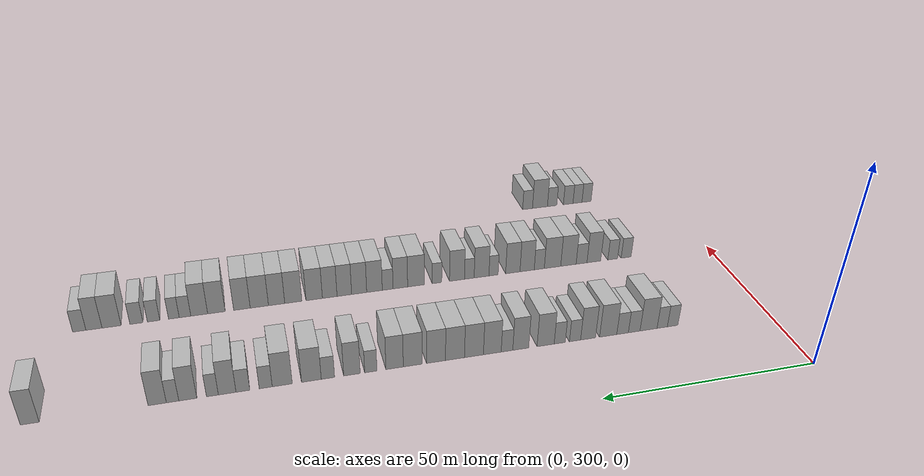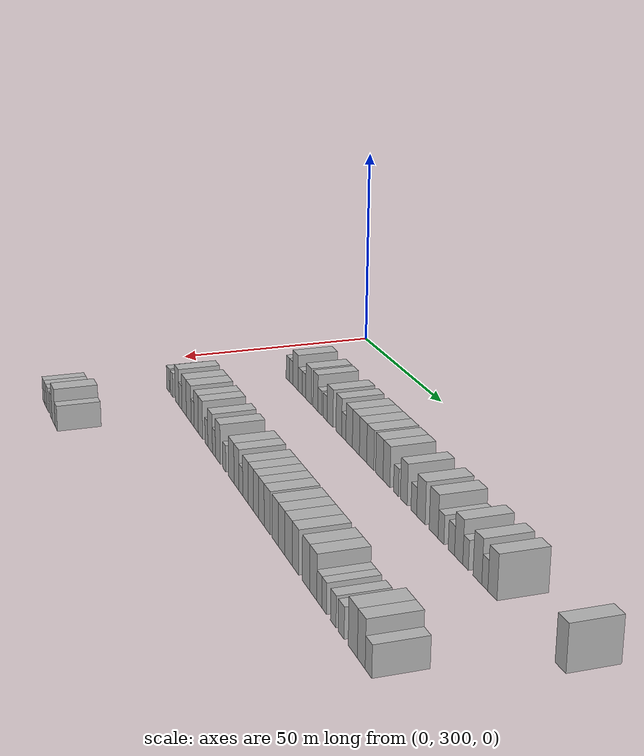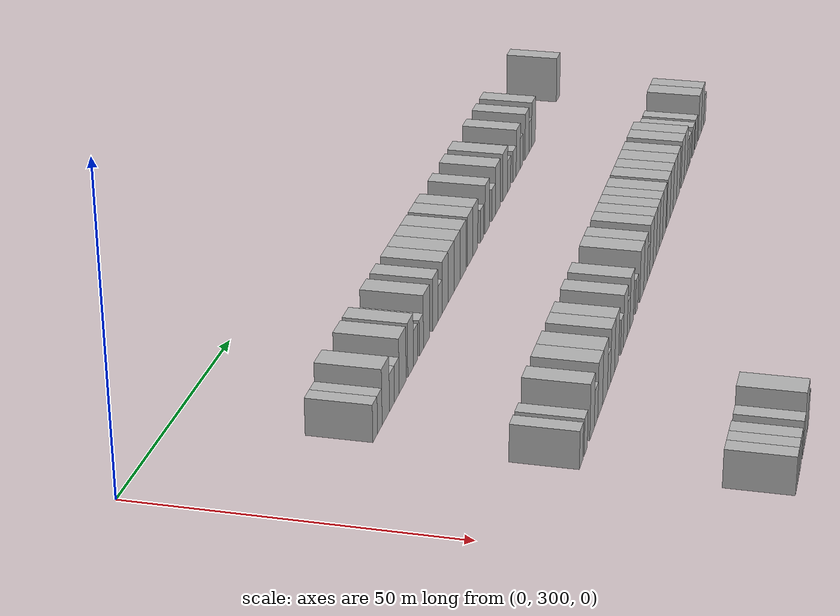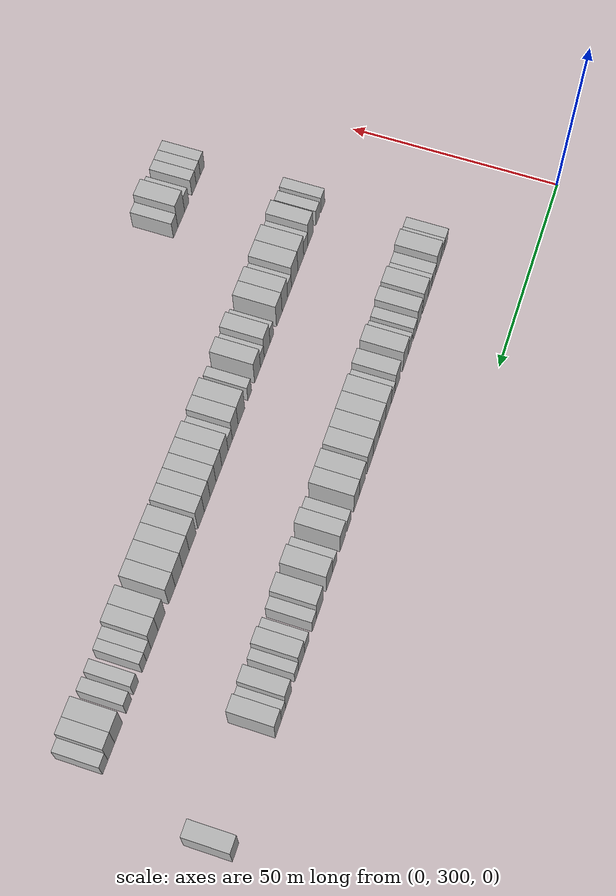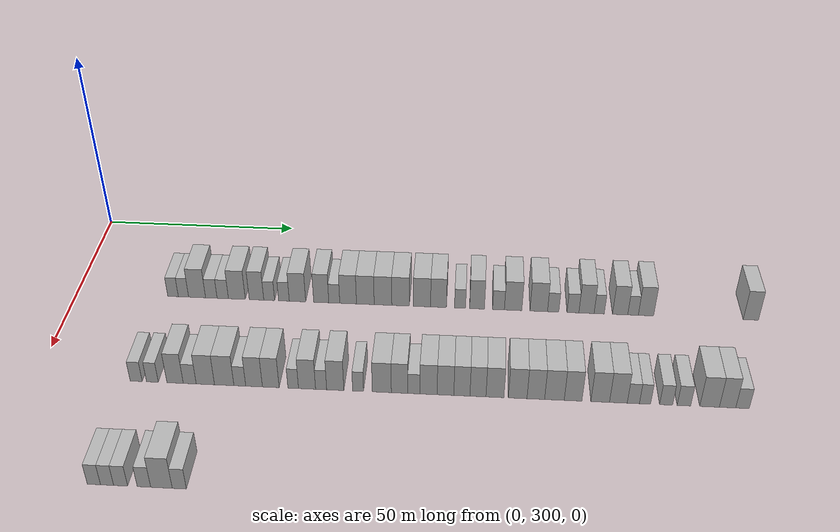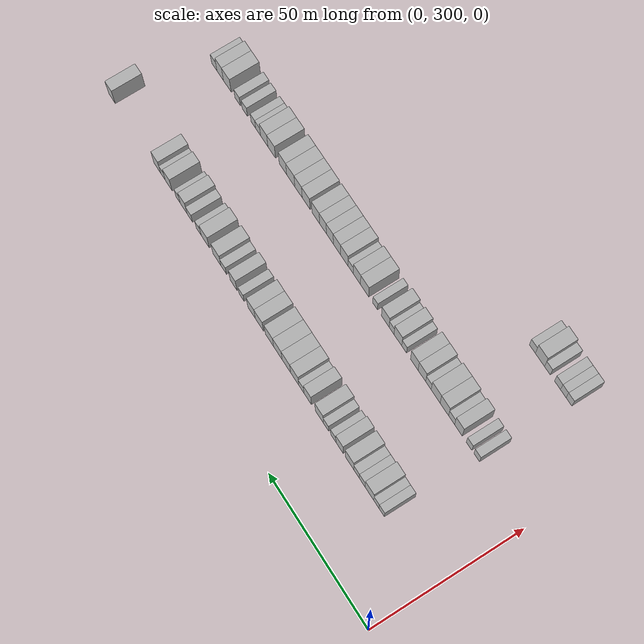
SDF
<sdf version="1.6">
 <world name="default">
  <model name="building_189">
   <static>1</static>
   <pose>25.0000 324.3886 0 0.000000 0.000000 0.000000</pose>
   <link name="link">
    <pose>0 0 3.00 0 0 0</pose>
    <collision name="collision"><geometry><box><size>10.0000 2.6767 6.0000</size></box></geometry></collision>
    <visual name="visual">
     <cast_shadows>0</cast_shadows>
     <geometry><box><size>10.0000 2.6767 6.0000</size></box></geometry>
     <material>
      <script>
       <uri>model://HANNAS_wall/materials/scripts</uri>
       <uri>model://HANNAS_wall/materials/textures</uri>
       <name>vrc/HANNAS_wall</name>
      </script>
     </material>
    </visual>
   </link>
  </model>
  <model name="building_190">
   <static>1</static>
   <pose>25.0000 327.0334 0 0.000000 0.000000 0.000000</pose>
   <link name="link">
    <pose>0 0 3.00 0 0 0</pose>
    <collision name="collision"><geometry><box><size>10.0000 2.6129 6.0000</size></box></geometry></collision>
    <visual name="visual">
     <cast_shadows>0</cast_shadows>
     <geometry><box><size>10.0000 2.6129 6.0000</size></box></geometry>
     <material>
      <script>
       <uri>model://HANNAS_wall/materials/scripts</uri>
       <uri>model://HANNAS_wall/materials/textures</uri>
       <name>vrc/HANNAS_wall</name>
      </script>
     </material>
    </visual>
   </link>
  </model>
  <model name="building_191">
   <static>1</static>
   <pose>25.0000 330.4876 0 0.000000 0.000000 0.000000</pose>
   <link name="link">
    <pose>0 0 4.50 0 0 0</pose>
    <collision name="collision"><geometry><box><size>10.0000 4.2954 9.0000</size></box></geometry></collision>
    <visual name="visual">
     <cast_shadows>0</cast_shadows>
     <geometry><box><size>10.0000 4.2954 9.0000</size></box></geometry>
     <material>
      <script>
       <uri>model://HANNAS_wall/materials/scripts</uri>
       <uri>model://HANNAS_wall/materials/textures</uri>
       <name>vrc/HANNAS_wall</name>
      </script>
     </material>
    </visual>
   </link>
  </model>
  <model name="building_192">
   <static>1</static>
   <pose>25.0000 334.0920 0 0.000000 0.000000 0.000000</pose>
   <link name="link">
    <pose>0 0 3.00 0 0 0</pose>
    <collision name="collision"><geometry><box><size>10.0000 2.9133 6.0000</size></box></geometry></collision>
    <visual name="visual">
     <cast_shadows>0</cast_shadows>
     <geometry><box><size>10.0000 2.9133 6.0000</size></box></geometry>
     <material>
      <script>
       <uri>model://HANNAS_wall/materials/scripts</uri>
       <uri>model://HANNAS_wall/materials/textures</uri>
       <name>vrc/HANNAS_wall</name>
      </script>
     </material>
    </visual>
   </link>
  </model>
  <model name="building_193">
   <static>1</static>
   <pose>25.0000 336.9892 0 0.000000 0.000000 0.000000</pose>
   <link name="link">
    <pose>0 0 3.00 0 0 0</pose>
    <collision name="collision"><geometry><box><size>10.0000 2.8812 6.0000</size></box></geometry></collision>
    <visual name="visual">
     <cast_shadows>0</cast_shadows>
     <geometry><box><size>10.0000 2.8812 6.0000</size></box></geometry>
     <material>
      <script>
       <uri>model://HANNAS_wall/materials/scripts</uri>
       <uri>model://HANNAS_wall/materials/textures</uri>
       <name>vrc/HANNAS_wall</name>
      </script>
     </material>
    </visual>
   </link>
  </model>
  <model name="building_194">
   <static>1</static>
   <pose>25.0000 340.5602 0 0.000000 0.000000 0.000000</pose>
   <link name="link">
    <pose>0 0 4.50 0 0 0</pose>
    <collision name="collision"><geometry><box><size>10.0000 4.2607 9.0000</size></box></geometry></collision>
    <visual name="visual">
     <cast_shadows>0</cast_shadows>
     <geometry><box><size>10.0000 4.2607 9.0000</size></box></geometry>
     <material>
      <script>
       <uri>model://HANNAS_wall/materials/scripts</uri>
       <uri>model://HANNAS_wall/materials/textures</uri>
       <name>vrc/HANNAS_wall</name>
      </script>
     </material>
    </visual>
   </link>
  </model>
  <model name="building_195">
   <static>1</static>
   <pose>25.0000 345.5184 0 0.000000 0.000000 0.000000</pose>
   <link name="link">
    <pose>0 0 4.50 0 0 0</pose>
    <collision name="collision"><geometry><box><size>10.0000 3.6558 9.0000</size></box></geometry></collision>
    <visual name="visual">
     <cast_shadows>0</cast_shadows>
     <geometry><box><size>10.0000 3.6558 9.0000</size></box></geometry>
     <material>
      <script>
       <uri>model://HANNAS_wall/materials/scripts</uri>
       <uri>model://HANNAS_wall/materials/textures</uri>
       <name>vrc/HANNAS_wall</name>
      </script>
     </material>
    </visual>
   </link>
  </model>
  <model name="building_196">
   <static>1</static>
   <pose>25.0000 348.7129 0 0.000000 0.000000 0.000000</pose>
   <link name="link">
    <pose>0 0 3.00 0 0 0</pose>
    <collision name="collision"><geometry><box><size>10.0000 2.7330 6.0000</size></box></geometry></collision>
    <visual name="visual">
     <cast_shadows>0</cast_shadows>
     <geometry><box><size>10.0000 2.7330 6.0000</size></box></geometry>
     <material>
      <script>
       <uri>model://HANNAS_wall/materials/scripts</uri>
       <uri>model://HANNAS_wall/materials/textures</uri>
       <name>vrc/HANNAS_wall</name>
      </script>
     </material>
    </visual>
   </link>
  </model>
  <model name="building_197">
   <static>1</static>
   <pose>25.0000 352.4227 0 0.000000 0.000000 0.000000</pose>
   <link name="link">
    <pose>0 0 3.00 0 0 0</pose>
    <collision name="collision"><geometry><box><size>10.0000 2.6866 6.0000</size></box></geometry></collision>
    <visual name="visual">
     <cast_shadows>0</cast_shadows>
     <geometry><box><size>10.0000 2.6866 6.0000</size></box></geometry>
     <material>
      <script>
       <uri>model://HANNAS_wall/materials/scripts</uri>
       <uri>model://HANNAS_wall/materials/textures</uri>
       <name>vrc/HANNAS_wall</name>
      </script>
     </material>
    </visual>
   </link>
  </model>
  <model name="building_198">
   <static>1</static>
   <pose>25.0000 355.8273 0 0.000000 0.000000 0.000000</pose>
   <link name="link">
    <pose>0 0 4.50 0 0 0</pose>
    <collision name="collision"><geometry><box><size>10.0000 4.1227 9.0000</size></box></geometry></collision>
    <visual name="visual">
     <cast_shadows>0</cast_shadows>
     <geometry><box><size>10.0000 4.1227 9.0000</size></box></geometry>
     <material>
      <script>
       <uri>model://HANNAS_wall/materials/scripts</uri>
       <uri>model://HANNAS_wall/materials/textures</uri>
       <name>vrc/HANNAS_wall</name>
      </script>
     </material>
    </visual>
   </link>
  </model>
  <model name="building_199">
   <static>1</static>
   <pose>25.0000 361.7831 0 0.000000 0.000000 0.000000</pose>
   <link name="link">
    <pose>0 0 4.50 0 0 0</pose>
    <collision name="collision"><geometry><box><size>10.0000 3.7888 9.0000</size></box></geometry></collision>
    <visual name="visual">
     <cast_shadows>0</cast_shadows>
     <geometry><box><size>10.0000 3.7888 9.0000</size></box></geometry>
     <material>
      <script>
       <uri>model://HANNAS_wall/materials/scripts</uri>
       <uri>model://HANNAS_wall/materials/textures</uri>
       <name>vrc/HANNAS_wall</name>
      </script>
     </material>
    </visual>
   </link>
  </model>
  <model name="building_200">
   <static>1</static>
   <pose>25.0000 365.0500 0 0.000000 0.000000 0.000000</pose>
   <link name="link">
    <pose>0 0 3.00 0 0 0</pose>
    <collision name="collision"><geometry><box><size>10.0000 2.7452 6.0000</size></box></geometry></collision>
    <visual name="visual">
     <cast_shadows>0</cast_shadows>
     <geometry><box><size>10.0000 2.7452 6.0000</size></box></geometry>
     <material>
      <script>
       <uri>model://HANNAS_wall/materials/scripts</uri>
       <uri>model://HANNAS_wall/materials/textures</uri>
       <name>vrc/HANNAS_wall</name>
      </script>
     </material>
    </visual>
   </link>
  </model>
  <model name="building_201">
   <static>1</static>
   <pose>25.0000 368.5111 0 0.000000 0.000000 0.000000</pose>
   <link name="link">
    <pose>0 0 4.50 0 0 0</pose>
    <collision name="collision"><geometry><box><size>10.0000 4.1770 9.0000</size></box></geometry></collision>
    <visual name="visual">
     <cast_shadows>0</cast_shadows>
     <geometry><box><size>10.0000 4.1770 9.0000</size></box></geometry>
     <material>
      <script>
       <uri>model://HANNAS_wall/materials/scripts</uri>
       <uri>model://HANNAS_wall/materials/textures</uri>
       <name>vrc/HANNAS_wall</name>
      </script>
     </material>
    </visual>
   </link>
  </model>
  <model name="building_202">
   <static>1</static>
   <pose>25.0000 372.8101 0 0.000000 0.000000 0.000000</pose>
   <link name="link">
    <pose>0 0 4.50 0 0 0</pose>
    <collision name="collision"><geometry><box><size>10.0000 4.4209 9.0000</size></box></geometry></collision>
    <visual name="visual">
     <cast_shadows>0</cast_shadows>
     <geometry><box><size>10.0000 4.4209 9.0000</size></box></geometry>
     <material>
      <script>
       <uri>model://HANNAS_wall/materials/scripts</uri>
       <uri>model://HANNAS_wall/materials/textures</uri>
       <name>vrc/HANNAS_wall</name>
      </script>
     </material>
    </visual>
   </link>
  </model>
  <model name="building_203">
   <static>1</static>
   <pose>25.0000 377.2195 0 0.000000 0.000000 0.000000</pose>
   <link name="link">
    <pose>0 0 4.50 0 0 0</pose>
    <collision name="collision"><geometry><box><size>10.0000 4.3978 9.0000</size></box></geometry></collision>
    <visual name="visual">
     <cast_shadows>0</cast_shadows>
     <geometry><box><size>10.0000 4.3978 9.0000</size></box></geometry>
     <material>
      <script>
       <uri>model://HANNAS_wall/materials/scripts</uri>
       <uri>model://HANNAS_wall/materials/textures</uri>
       <name>vrc/HANNAS_wall</name>
      </script>
     </material>
    </visual>
   </link>
  </model>
  <model name="building_204">
   <static>1</static>
   <pose>25.0000 381.5873 0 0.000000 0.000000 0.000000</pose>
   <link name="link">
    <pose>0 0 4.50 0 0 0</pose>
    <collision name="collision"><geometry><box><size>10.0000 4.3377 9.0000</size></box></geometry></collision>
    <visual name="visual">
     <cast_shadows>0</cast_shadows>
     <geometry><box><size>10.0000 4.3377 9.0000</size></box></geometry>
     <material>
      <script>
       <uri>model://HANNAS_wall/materials/scripts</uri>
       <uri>model://HANNAS_wall/materials/textures</uri>
       <name>vrc/HANNAS_wall</name>
      </script>
     </material>
    </visual>
   </link>
  </model>
  <model name="building_205">
   <static>1</static>
   <pose>25.0000 386.9026 0 0.000000 0.000000 0.000000</pose>
   <link name="link">
    <pose>0 0 4.50 0 0 0</pose>
    <collision name="collision"><geometry><box><size>10.0000 4.2930 9.0000</size></box></geometry></collision>
    <visual name="visual">
     <cast_shadows>0</cast_shadows>
     <geometry><box><size>10.0000 4.2930 9.0000</size></box></geometry>
     <material>
      <script>
       <uri>model://HANNAS_wall/materials/scripts</uri>
       <uri>model://HANNAS_wall/materials/textures</uri>
       <name>vrc/HANNAS_wall</name>
      </script>
     </material>
    </visual>
   </link>
  </model>
  <model name="building_206">
   <static>1</static>
   <pose>25.0000 391.0097 0 0.000000 0.000000 0.000000</pose>
   <link name="link">
    <pose>0 0 4.50 0 0 0</pose>
    <collision name="collision"><geometry><box><size>10.0000 3.9212 9.0000</size></box></geometry></collision>
    <visual name="visual">
     <cast_shadows>0</cast_shadows>
     <geometry><box><size>10.0000 3.9212 9.0000</size></box></geometry>
     <material>
      <script>
       <uri>model://HANNAS_wall/materials/scripts</uri>
       <uri>model://HANNAS_wall/materials/textures</uri>
       <name>vrc/HANNAS_wall</name>
      </script>
     </material>
    </visual>
   </link>
  </model>
  <model name="building_207">
   <static>1</static>
   <pose>25.0000 396.3408 0 0.000000 0.000000 0.000000</pose>
   <link name="link">
    <pose>0 0 3.00 0 0 0</pose>
    <collision name="collision"><geometry><box><size>10.0000 2.7410 6.0000</size></box></geometry></collision>
    <visual name="visual">
     <cast_shadows>0</cast_shadows>
     <geometry><box><size>10.0000 2.7410 6.0000</size></box></geometry>
     <material>
      <script>
       <uri>model://HANNAS_wall/materials/scripts</uri>
       <uri>model://HANNAS_wall/materials/textures</uri>
       <name>vrc/HANNAS_wall</name>
      </script>
     </material>
    </visual>
   </link>
  </model>
  <model name="building_208">
   <static>1</static>
   <pose>25.0000 400.5368 0 0.000000 0.000000 0.000000</pose>
   <link name="link">
    <pose>0 0 4.50 0 0 0</pose>
    <collision name="collision"><geometry><box><size>10.0000 3.6510 9.0000</size></box></geometry></collision>
    <visual name="visual">
     <cast_shadows>0</cast_shadows>
     <geometry><box><size>10.0000 3.6510 9.0000</size></box></geometry>
     <material>
      <script>
       <uri>model://HANNAS_wall/materials/scripts</uri>
       <uri>model://HANNAS_wall/materials/textures</uri>
       <name>vrc/HANNAS_wall</name>
      </script>
     </material>
    </visual>
   </link>
  </model>
  <model name="building_209">
   <static>1</static>
   <pose>25.0000 405.8255 0 0.000000 0.000000 0.000000</pose>
   <link name="link">
    <pose>0 0 3.00 0 0 0</pose>
    <collision name="collision"><geometry><box><size>10.0000 2.9264 6.0000</size></box></geometry></collision>
    <visual name="visual">
     <cast_shadows>0</cast_shadows>
     <geometry><box><size>10.0000 2.9264 6.0000</size></box></geometry>
     <material>
      <script>
       <uri>model://HANNAS_wall/materials/scripts</uri>
       <uri>model://HANNAS_wall/materials/textures</uri>
       <name>vrc/HANNAS_wall</name>
      </script>
     </material>
    </visual>
   </link>
  </model>
  <model name="building_210">
   <static>1</static>
   <pose>25.0000 409.4385 0 0.000000 0.000000 0.000000</pose>
   <link name="link">
    <pose>0 0 4.50 0 0 0</pose>
    <collision name="collision"><geometry><box><size>10.0000 4.2996 9.0000</size></box></geometry></collision>
    <visual name="visual">
     <cast_shadows>0</cast_shadows>
     <geometry><box><size>10.0000 4.2996 9.0000</size></box></geometry>
     <material>
      <script>
       <uri>model://HANNAS_wall/materials/scripts</uri>
       <uri>model://HANNAS_wall/materials/textures</uri>
       <name>vrc/HANNAS_wall</name>
      </script>
     </material>
    </visual>
   </link>
  </model>
  <model name="building_211">
   <static>1</static>
   <pose>25.0000 415.7420 0 0.000000 0.000000 0.000000</pose>
   <link name="link">
    <pose>0 0 4.50 0 0 0</pose>
    <collision name="collision"><geometry><box><size>10.0000 4.3074 9.0000</size></box></geometry></collision>
    <visual name="visual">
     <cast_shadows>0</cast_shadows>
     <geometry><box><size>10.0000 4.3074 9.0000</size></box></geometry>
     <material>
      <script>
       <uri>model://HANNAS_wall/materials/scripts</uri>
       <uri>model://HANNAS_wall/materials/textures</uri>
       <name>vrc/HANNAS_wall</name>
      </script>
     </material>
    </visual>
   </link>
  </model>
  <model name="building_212">
   <static>1</static>
   <pose>25.0000 419.2842 0 0.000000 0.000000 0.000000</pose>
   <link name="link">
    <pose>0 0 3.00 0 0 0</pose>
    <collision name="collision"><geometry><box><size>10.0000 2.7771 6.0000</size></box></geometry></collision>
    <visual name="visual">
     <cast_shadows>0</cast_shadows>
     <geometry><box><size>10.0000 2.7771 6.0000</size></box></geometry>
     <material>
      <script>
       <uri>model://HANNAS_wall/materials/scripts</uri>
       <uri>model://HANNAS_wall/materials/textures</uri>
       <name>vrc/HANNAS_wall</name>
      </script>
     </material>
    </visual>
   </link>
  </model>
  <model name="building_213">
   <static>1</static>
   <pose>25.0000 424.1337 0 0.000000 0.000000 0.000000</pose>
   <link name="link">
    <pose>0 0 3.00 0 0 0</pose>
    <collision name="collision"><geometry><box><size>10.0000 2.9218 6.0000</size></box></geometry></collision>
    <visual name="visual">
     <cast_shadows>0</cast_shadows>
     <geometry><box><size>10.0000 2.9218 6.0000</size></box></geometry>
     <material>
      <script>
       <uri>model://HANNAS_wall/materials/scripts</uri>
       <uri>model://HANNAS_wall/materials/textures</uri>
       <name>vrc/HANNAS_wall</name>
      </script>
     </material>
    </visual>
   </link>
  </model>
  <model name="building_214">
   <static>1</static>
   <pose>25.0000 427.4538 0 0.000000 0.000000 0.000000</pose>
   <link name="link">
    <pose>0 0 4.50 0 0 0</pose>
    <collision name="collision"><geometry><box><size>10.0000 3.7185 9.0000</size></box></geometry></collision>
    <visual name="visual">
     <cast_shadows>0</cast_shadows>
     <geometry><box><size>10.0000 3.7185 9.0000</size></box></geometry>
     <material>
      <script>
       <uri>model://HANNAS_wall/materials/scripts</uri>
       <uri>model://HANNAS_wall/materials/textures</uri>
       <name>vrc/HANNAS_wall</name>
      </script>
     </material>
    </visual>
   </link>
  </model>
  <model name="building_215">
   <static>1</static>
   <pose>25.0000 430.5569 0 0.000000 0.000000 0.000000</pose>
   <link name="link">
    <pose>0 0 3.00 0 0 0</pose>
    <collision name="collision"><geometry><box><size>10.0000 2.4877 6.0000</size></box></geometry></collision>
    <visual name="visual">
     <cast_shadows>0</cast_shadows>
     <geometry><box><size>10.0000 2.4877 6.0000</size></box></geometry>
     <material>
      <script>
       <uri>model://HANNAS_wall/materials/scripts</uri>
       <uri>model://HANNAS_wall/materials/textures</uri>
       <name>vrc/HANNAS_wall</name>
      </script>
     </material>
    </visual>
   </link>
  </model>
  <model name="building_216">
   <static>1</static>
   <pose>25.0000 435.6661 0 0.000000 0.000000 0.000000</pose>
   <link name="link">
    <pose>0 0 4.50 0 0 0</pose>
    <collision name="collision"><geometry><box><size>10.0000 3.7306 9.0000</size></box></geometry></collision>
    <visual name="visual">
     <cast_shadows>0</cast_shadows>
     <geometry><box><size>10.0000 3.7306 9.0000</size></box></geometry>
     <material>
      <script>
       <uri>model://HANNAS_wall/materials/scripts</uri>
       <uri>model://HANNAS_wall/materials/textures</uri>
       <name>vrc/HANNAS_wall</name>
      </script>
     </material>
    </visual>
   </link>
  </model>
  <model name="building_217">
   <static>1</static>
   <pose>25.0000 438.8104 0 0.000000 0.000000 0.000000</pose>
   <link name="link">
    <pose>0 0 3.00 0 0 0</pose>
    <collision name="collision"><geometry><box><size>10.0000 2.5581 6.0000</size></box></geometry></collision>
    <visual name="visual">
     <cast_shadows>0</cast_shadows>
     <geometry><box><size>10.0000 2.5581 6.0000</size></box></geometry>
     <material>
      <script>
       <uri>model://HANNAS_wall/materials/scripts</uri>
       <uri>model://HANNAS_wall/materials/textures</uri>
       <name>vrc/HANNAS_wall</name>
      </script>
     </material>
    </visual>
   </link>
  </model>
  <model name="building_218">
   <static>1</static>
   <pose>25.0000 441.9618 0 0.000000 0.000000 0.000000</pose>
   <link name="link">
    <pose>0 0 4.50 0 0 0</pose>
    <collision name="collision"><geometry><box><size>10.0000 3.7446 9.0000</size></box></geometry></collision>
    <visual name="visual">
     <cast_shadows>0</cast_shadows>
     <geometry><box><size>10.0000 3.7446 9.0000</size></box></geometry>
     <material>
      <script>
       <uri>model://HANNAS_wall/materials/scripts</uri>
       <uri>model://HANNAS_wall/materials/textures</uri>
       <name>vrc/HANNAS_wall</name>
      </script>
     </material>
    </visual>
   </link>
  </model>
  <model name="building_219">
   <static>1</static>
   <pose>25.0000 467.3610 0 0.000000 0.000000 0.000000</pose>
   <link name="link">
    <pose>0 0 4.50 0 0 0</pose>
    <collision name="collision"><geometry><box><size>10.0000 3.6846 9.0000</size></box></geometry></collision>
    <visual name="visual">
     <cast_shadows>0</cast_shadows>
     <geometry><box><size>10.0000 3.6846 9.0000</size></box></geometry>
     <material>
      <script>
       <uri>model://HANNAS_wall/materials/scripts</uri>
       <uri>model://HANNAS_wall/materials/textures</uri>
       <name>vrc/HANNAS_wall</name>
      </script>
     </material>
    </visual>
   </link>
  </model>
  <model name="building_413">
   <static>1</static>
   <pose>55.0000 323.0829 0 0.000000 0.000000 0.000000</pose>
   <link name="link">
    <pose>0 0 3.00 0 0 0</pose>
    <collision name="collision"><geometry><box><size>10.0000 2.7876 6.0000</size></box></geometry></collision>
    <visual name="visual">
     <cast_shadows>0</cast_shadows>
     <geometry><box><size>10.0000 2.7876 6.0000</size></box></geometry>
     <material>
      <script>
       <uri>model://HANNAS_wall/materials/scripts</uri>
       <uri>model://HANNAS_wall/materials/textures</uri>
       <name>vrc/HANNAS_wall</name>
      </script>
     </material>
    </visual>
   </link>
  </model>
  <model name="building_414">
   <static>1</static>
   <pose>55.0000 326.8368 0 0.000000 0.000000 0.000000</pose>
   <link name="link">
    <pose>0 0 3.00 0 0 0</pose>
    <collision name="collision"><geometry><box><size>10.0000 2.7201 6.0000</size></box></geometry></collision>
    <visual name="visual">
     <cast_shadows>0</cast_shadows>
     <geometry><box><size>10.0000 2.7201 6.0000</size></box></geometry>
     <material>
      <script>
       <uri>model://HANNAS_wall/materials/scripts</uri>
       <uri>model://HANNAS_wall/materials/textures</uri>
       <name>vrc/HANNAS_wall</name>
      </script>
     </material>
    </visual>
   </link>
  </model>
  <model name="building_415">
   <static>1</static>
   <pose>55.0000 332.0861 0 0.000000 0.000000 0.000000</pose>
   <link name="link">
    <pose>0 0 4.50 0 0 0</pose>
    <collision name="collision"><geometry><box><size>10.0000 3.7784 9.0000</size></box></geometry></collision>
    <visual name="visual">
     <cast_shadows>0</cast_shadows>
     <geometry><box><size>10.0000 3.7784 9.0000</size></box></geometry>
     <material>
      <script>
       <uri>model://HANNAS_wall/materials/scripts</uri>
       <uri>model://HANNAS_wall/materials/textures</uri>
       <name>vrc/HANNAS_wall</name>
      </script>
     </material>
    </visual>
   </link>
  </model>
  <model name="building_416">
   <static>1</static>
   <pose>55.0000 335.4687 0 0.000000 0.000000 0.000000</pose>
   <link name="link">
    <pose>0 0 3.00 0 0 0</pose>
    <collision name="collision"><geometry><box><size>10.0000 2.9868 6.0000</size></box></geometry></collision>
    <visual name="visual">
     <cast_shadows>0</cast_shadows>
     <geometry><box><size>10.0000 2.9868 6.0000</size></box></geometry>
     <material>
      <script>
       <uri>model://HANNAS_wall/materials/scripts</uri>
       <uri>model://HANNAS_wall/materials/textures</uri>
       <name>vrc/HANNAS_wall</name>
      </script>
     </material>
    </visual>
   </link>
  </model>
  <model name="building_417">
   <static>1</static>
   <pose>55.0000 339.0705 0 0.000000 0.000000 0.000000</pose>
   <link name="link">
    <pose>0 0 4.50 0 0 0</pose>
    <collision name="collision"><geometry><box><size>10.0000 4.2168 9.0000</size></box></geometry></collision>
    <visual name="visual">
     <cast_shadows>0</cast_shadows>
     <geometry><box><size>10.0000 4.2168 9.0000</size></box></geometry>
     <material>
      <script>
       <uri>model://HANNAS_wall/materials/scripts</uri>
       <uri>model://HANNAS_wall/materials/textures</uri>
       <name>vrc/HANNAS_wall</name>
      </script>
     </material>
    </visual>
   </link>
  </model>
  <model name="building_418">
   <static>1</static>
   <pose>55.0000 343.4099 0 0.000000 0.000000 0.000000</pose>
   <link name="link">
    <pose>0 0 4.50 0 0 0</pose>
    <collision name="collision"><geometry><box><size>10.0000 4.4619 9.0000</size></box></geometry></collision>
    <visual name="visual">
     <cast_shadows>0</cast_shadows>
     <geometry><box><size>10.0000 4.4619 9.0000</size></box></geometry>
     <material>
      <script>
       <uri>model://HANNAS_wall/materials/scripts</uri>
       <uri>model://HANNAS_wall/materials/textures</uri>
       <name>vrc/HANNAS_wall</name>
      </script>
     </material>
    </visual>
   </link>
  </model>
  <model name="building_419">
   <static>1</static>
   <pose>55.0000 347.0024 0 0.000000 0.000000 0.000000</pose>
   <link name="link">
    <pose>0 0 3.00 0 0 0</pose>
    <collision name="collision"><geometry><box><size>10.0000 2.7231 6.0000</size></box></geometry></collision>
    <visual name="visual">
     <cast_shadows>0</cast_shadows>
     <geometry><box><size>10.0000 2.7231 6.0000</size></box></geometry>
     <material>
      <script>
       <uri>model://HANNAS_wall/materials/scripts</uri>
       <uri>model://HANNAS_wall/materials/textures</uri>
       <name>vrc/HANNAS_wall</name>
      </script>
     </material>
    </visual>
   </link>
  </model>
  <model name="building_420">
   <static>1</static>
   <pose>55.0000 350.2751 0 0.000000 0.000000 0.000000</pose>
   <link name="link">
    <pose>0 0 4.50 0 0 0</pose>
    <collision name="collision"><geometry><box><size>10.0000 3.8223 9.0000</size></box></geometry></collision>
    <visual name="visual">
     <cast_shadows>0</cast_shadows>
     <geometry><box><size>10.0000 3.8223 9.0000</size></box></geometry>
     <material>
      <script>
       <uri>model://HANNAS_wall/materials/scripts</uri>
       <uri>model://HANNAS_wall/materials/textures</uri>
       <name>vrc/HANNAS_wall</name>
      </script>
     </material>
    </visual>
   </link>
  </model>
  <model name="building_421">
   <static>1</static>
   <pose>55.0000 354.1046 0 0.000000 0.000000 0.000000</pose>
   <link name="link">
    <pose>0 0 4.50 0 0 0</pose>
    <collision name="collision"><geometry><box><size>10.0000 3.8366 9.0000</size></box></geometry></collision>
    <visual name="visual">
     <cast_shadows>0</cast_shadows>
     <geometry><box><size>10.0000 3.8366 9.0000</size></box></geometry>
     <material>
      <script>
       <uri>model://HANNAS_wall/materials/scripts</uri>
       <uri>model://HANNAS_wall/materials/textures</uri>
       <name>vrc/HANNAS_wall</name>
      </script>
     </material>
    </visual>
   </link>
  </model>
  <model name="building_422">
   <static>1</static>
   <pose>55.0000 359.2342 0 0.000000 0.000000 0.000000</pose>
   <link name="link">
    <pose>0 0 3.00 0 0 0</pose>
    <collision name="collision"><geometry><box><size>10.0000 2.4226 6.0000</size></box></geometry></collision>
    <visual name="visual">
     <cast_shadows>0</cast_shadows>
     <geometry><box><size>10.0000 2.4226 6.0000</size></box></geometry>
     <material>
      <script>
       <uri>model://HANNAS_wall/materials/scripts</uri>
       <uri>model://HANNAS_wall/materials/textures</uri>
       <name>vrc/HANNAS_wall</name>
      </script>
     </material>
    </visual>
   </link>
  </model>
  <model name="building_423">
   <static>1</static>
   <pose>55.0000 362.3940 0 0.000000 0.000000 0.000000</pose>
   <link name="link">
    <pose>0 0 4.50 0 0 0</pose>
    <collision name="collision"><geometry><box><size>10.0000 3.8970 9.0000</size></box></geometry></collision>
    <visual name="visual">
     <cast_shadows>0</cast_shadows>
     <geometry><box><size>10.0000 3.8970 9.0000</size></box></geometry>
     <material>
      <script>
       <uri>model://HANNAS_wall/materials/scripts</uri>
       <uri>model://HANNAS_wall/materials/textures</uri>
       <name>vrc/HANNAS_wall</name>
      </script>
     </material>
    </visual>
   </link>
  </model>
  <model name="building_424">
   <static>1</static>
   <pose>55.0000 365.6057 0 0.000000 0.000000 0.000000</pose>
   <link name="link">
    <pose>0 0 3.00 0 0 0</pose>
    <collision name="collision"><geometry><box><size>10.0000 2.5265 6.0000</size></box></geometry></collision>
    <visual name="visual">
     <cast_shadows>0</cast_shadows>
     <geometry><box><size>10.0000 2.5265 6.0000</size></box></geometry>
     <material>
      <script>
       <uri>model://HANNAS_wall/materials/scripts</uri>
       <uri>model://HANNAS_wall/materials/textures</uri>
       <name>vrc/HANNAS_wall</name>
      </script>
     </material>
    </visual>
   </link>
  </model>
  <model name="building_425">
   <static>1</static>
   <pose>55.0000 368.8273 0 0.000000 0.000000 0.000000</pose>
   <link name="link">
    <pose>0 0 4.50 0 0 0</pose>
    <collision name="collision"><geometry><box><size>10.0000 3.9168 9.0000</size></box></geometry></collision>
    <visual name="visual">
     <cast_shadows>0</cast_shadows>
     <geometry><box><size>10.0000 3.9168 9.0000</size></box></geometry>
     <material>
      <script>
       <uri>model://HANNAS_wall/materials/scripts</uri>
       <uri>model://HANNAS_wall/materials/textures</uri>
       <name>vrc/HANNAS_wall</name>
      </script>
     </material>
    </visual>
   </link>
  </model>
  <model name="building_426">
   <static>1</static>
   <pose>55.0000 374.0197 0 0.000000 0.000000 0.000000</pose>
   <link name="link">
    <pose>0 0 3.00 0 0 0</pose>
    <collision name="collision"><geometry><box><size>10.0000 2.4679 6.0000</size></box></geometry></collision>
    <visual name="visual">
     <cast_shadows>0</cast_shadows>
     <geometry><box><size>10.0000 2.4679 6.0000</size></box></geometry>
     <material>
      <script>
       <uri>model://HANNAS_wall/materials/scripts</uri>
       <uri>model://HANNAS_wall/materials/textures</uri>
       <name>vrc/HANNAS_wall</name>
      </script>
     </material>
    </visual>
   </link>
  </model>
  <model name="building_427">
   <static>1</static>
   <pose>55.0000 379.4080 0 0.000000 0.000000 0.000000</pose>
   <link name="link">
    <pose>0 0 4.50 0 0 0</pose>
    <collision name="collision"><geometry><box><size>10.0000 4.3086 9.0000</size></box></geometry></collision>
    <visual name="visual">
     <cast_shadows>0</cast_shadows>
     <geometry><box><size>10.0000 4.3086 9.0000</size></box></geometry>
     <material>
      <script>
       <uri>model://HANNAS_wall/materials/scripts</uri>
       <uri>model://HANNAS_wall/materials/textures</uri>
       <name>vrc/HANNAS_wall</name>
      </script>
     </material>
    </visual>
   </link>
  </model>
  <model name="building_428">
   <static>1</static>
   <pose>55.0000 383.4162 0 0.000000 0.000000 0.000000</pose>
   <link name="link">
    <pose>0 0 4.50 0 0 0</pose>
    <collision name="collision"><geometry><box><size>10.0000 3.7080 9.0000</size></box></geometry></collision>
    <visual name="visual">
     <cast_shadows>0</cast_shadows>
     <geometry><box><size>10.0000 3.7080 9.0000</size></box></geometry>
     <material>
      <script>
       <uri>model://HANNAS_wall/materials/scripts</uri>
       <uri>model://HANNAS_wall/materials/textures</uri>
       <name>vrc/HANNAS_wall</name>
      </script>
     </material>
    </visual>
   </link>
  </model>
  <model name="building_429">
   <static>1</static>
   <pose>55.0000 386.6321 0 0.000000 0.000000 0.000000</pose>
   <link name="link">
    <pose>0 0 3.00 0 0 0</pose>
    <collision name="collision"><geometry><box><size>10.0000 2.7237 6.0000</size></box></geometry></collision>
    <visual name="visual">
     <cast_shadows>0</cast_shadows>
     <geometry><box><size>10.0000 2.7237 6.0000</size></box></geometry>
     <material>
      <script>
       <uri>model://HANNAS_wall/materials/scripts</uri>
       <uri>model://HANNAS_wall/materials/textures</uri>
       <name>vrc/HANNAS_wall</name>
      </script>
     </material>
    </visual>
   </link>
  </model>
  <model name="building_430">
   <static>1</static>
   <pose>55.0000 389.9508 0 0.000000 0.000000 0.000000</pose>
   <link name="link">
    <pose>0 0 4.50 0 0 0</pose>
    <collision name="collision"><geometry><box><size>10.0000 3.9137 9.0000</size></box></geometry></collision>
    <visual name="visual">
     <cast_shadows>0</cast_shadows>
     <geometry><box><size>10.0000 3.9137 9.0000</size></box></geometry>
     <material>
      <script>
       <uri>model://HANNAS_wall/materials/scripts</uri>
       <uri>model://HANNAS_wall/materials/textures</uri>
       <name>vrc/HANNAS_wall</name>
      </script>
     </material>
    </visual>
   </link>
  </model>
  <model name="building_431">
   <static>1</static>
   <pose>55.0000 393.7918 0 0.000000 0.000000 0.000000</pose>
   <link name="link">
    <pose>0 0 4.50 0 0 0</pose>
    <collision name="collision"><geometry><box><size>10.0000 3.7683 9.0000</size></box></geometry></collision>
    <visual name="visual">
     <cast_shadows>0</cast_shadows>
     <geometry><box><size>10.0000 3.7683 9.0000</size></box></geometry>
     <material>
      <script>
       <uri>model://HANNAS_wall/materials/scripts</uri>
       <uri>model://HANNAS_wall/materials/textures</uri>
       <name>vrc/HANNAS_wall</name>
      </script>
     </material>
    </visual>
   </link>
  </model>
  <model name="building_432">
   <static>1</static>
   <pose>55.0000 397.4873 0 0.000000 0.000000 0.000000</pose>
   <link name="link">
    <pose>0 0 4.50 0 0 0</pose>
    <collision name="collision"><geometry><box><size>10.0000 3.6227 9.0000</size></box></geometry></collision>
    <visual name="visual">
     <cast_shadows>0</cast_shadows>
     <geometry><box><size>10.0000 3.6227 9.0000</size></box></geometry>
     <material>
      <script>
       <uri>model://HANNAS_wall/materials/scripts</uri>
       <uri>model://HANNAS_wall/materials/textures</uri>
       <name>vrc/HANNAS_wall</name>
      </script>
     </material>
    </visual>
   </link>
  </model>
  <model name="building_433">
   <static>1</static>
   <pose>55.0000 401.1020 0 0.000000 0.000000 0.000000</pose>
   <link name="link">
    <pose>0 0 4.50 0 0 0</pose>
    <collision name="collision"><geometry><box><size>10.0000 3.6068 9.0000</size></box></geometry></collision>
    <visual name="visual">
     <cast_shadows>0</cast_shadows>
     <geometry><box><size>10.0000 3.6068 9.0000</size></box></geometry>
     <material>
      <script>
       <uri>model://HANNAS_wall/materials/scripts</uri>
       <uri>model://HANNAS_wall/materials/textures</uri>
       <name>vrc/HANNAS_wall</name>
      </script>
     </material>
    </visual>
   </link>
  </model>
  <model name="building_434">
   <static>1</static>
   <pose>55.0000 404.9193 0 0.000000 0.000000 0.000000</pose>
   <link name="link">
    <pose>0 0 4.50 0 0 0</pose>
    <collision name="collision"><geometry><box><size>10.0000 4.0277 9.0000</size></box></geometry></collision>
    <visual name="visual">
     <cast_shadows>0</cast_shadows>
     <geometry><box><size>10.0000 4.0277 9.0000</size></box></geometry>
     <material>
      <script>
       <uri>model://HANNAS_wall/materials/scripts</uri>
       <uri>model://HANNAS_wall/materials/textures</uri>
       <name>vrc/HANNAS_wall</name>
      </script>
     </material>
    </visual>
   </link>
  </model>
  <model name="building_435">
   <static>1</static>
   <pose>55.0000 410.0188 0 0.000000 0.000000 0.000000</pose>
   <link name="link">
    <pose>0 0 4.50 0 0 0</pose>
    <collision name="collision"><geometry><box><size>10.0000 4.1715 9.0000</size></box></geometry></collision>
    <visual name="visual">
     <cast_shadows>0</cast_shadows>
     <geometry><box><size>10.0000 4.1715 9.0000</size></box></geometry>
     <material>
      <script>
       <uri>model://HANNAS_wall/materials/scripts</uri>
       <uri>model://HANNAS_wall/materials/textures</uri>
       <name>vrc/HANNAS_wall</name>
      </script>
     </material>
    </visual>
   </link>
  </model>
  <model name="building_436">
   <static>1</static>
   <pose>55.0000 414.0723 0 0.000000 0.000000 0.000000</pose>
   <link name="link">
    <pose>0 0 4.50 0 0 0</pose>
    <collision name="collision"><geometry><box><size>10.0000 3.9355 9.0000</size></box></geometry></collision>
    <visual name="visual">
     <cast_shadows>0</cast_shadows>
     <geometry><box><size>10.0000 3.9355 9.0000</size></box></geometry>
     <material>
      <script>
       <uri>model://HANNAS_wall/materials/scripts</uri>
       <uri>model://HANNAS_wall/materials/textures</uri>
       <name>vrc/HANNAS_wall</name>
      </script>
     </material>
    </visual>
   </link>
  </model>
  <model name="building_437">
   <static>1</static>
   <pose>55.0000 418.2296 0 0.000000 0.000000 0.000000</pose>
   <link name="link">
    <pose>0 0 4.50 0 0 0</pose>
    <collision name="collision"><geometry><box><size>10.0000 4.3792 9.0000</size></box></geometry></collision>
    <visual name="visual">
     <cast_shadows>0</cast_shadows>
     <geometry><box><size>10.0000 4.3792 9.0000</size></box></geometry>
     <material>
      <script>
       <uri>model://HANNAS_wall/materials/scripts</uri>
       <uri>model://HANNAS_wall/materials/textures</uri>
       <name>vrc/HANNAS_wall</name>
      </script>
     </material>
    </visual>
   </link>
  </model>
  <model name="building_438">
   <static>1</static>
   <pose>55.0000 422.3931 0 0.000000 0.000000 0.000000</pose>
   <link name="link">
    <pose>0 0 4.50 0 0 0</pose>
    <collision name="collision"><geometry><box><size>10.0000 3.9478 9.0000</size></box></geometry></collision>
    <visual name="visual">
     <cast_shadows>0</cast_shadows>
     <geometry><box><size>10.0000 3.9478 9.0000</size></box></geometry>
     <material>
      <script>
       <uri>model://HANNAS_wall/materials/scripts</uri>
       <uri>model://HANNAS_wall/materials/textures</uri>
       <name>vrc/HANNAS_wall</name>
      </script>
     </material>
    </visual>
   </link>
  </model>
  <model name="building_439">
   <static>1</static>
   <pose>55.0000 428.4338 0 0.000000 0.000000 0.000000</pose>
   <link name="link">
    <pose>0 0 4.50 0 0 0</pose>
    <collision name="collision"><geometry><box><size>10.0000 4.1336 9.0000</size></box></geometry></collision>
    <visual name="visual">
     <cast_shadows>0</cast_shadows>
     <geometry><box><size>10.0000 4.1336 9.0000</size></box></geometry>
     <material>
      <script>
       <uri>model://HANNAS_wall/materials/scripts</uri>
       <uri>model://HANNAS_wall/materials/textures</uri>
       <name>vrc/HANNAS_wall</name>
      </script>
     </material>
    </visual>
   </link>
  </model>
  <model name="building_440">
   <static>1</static>
   <pose>55.0000 432.4712 0 0.000000 0.000000 0.000000</pose>
   <link name="link">
    <pose>0 0 4.50 0 0 0</pose>
    <collision name="collision"><geometry><box><size>10.0000 3.9413 9.0000</size></box></geometry></collision>
    <visual name="visual">
     <cast_shadows>0</cast_shadows>
     <geometry><box><size>10.0000 3.9413 9.0000</size></box></geometry>
     <material>
      <script>
       <uri>model://HANNAS_wall/materials/scripts</uri>
       <uri>model://HANNAS_wall/materials/textures</uri>
       <name>vrc/HANNAS_wall</name>
      </script>
     </material>
    </visual>
   </link>
  </model>
  <model name="building_441">
   <static>1</static>
   <pose>55.0000 435.7905 0 0.000000 0.000000 0.000000</pose>
   <link name="link">
    <pose>0 0 3.00 0 0 0</pose>
    <collision name="collision"><geometry><box><size>10.0000 2.6972 6.0000</size></box></geometry></collision>
    <visual name="visual">
     <cast_shadows>0</cast_shadows>
     <geometry><box><size>10.0000 2.6972 6.0000</size></box></geometry>
     <material>
      <script>
       <uri>model://HANNAS_wall/materials/scripts</uri>
       <uri>model://HANNAS_wall/materials/textures</uri>
       <name>vrc/HANNAS_wall</name>
      </script>
     </material>
    </visual>
   </link>
  </model>
  <model name="building_442">
   <static>1</static>
   <pose>55.0000 438.3773 0 0.000000 0.000000 0.000000</pose>
   <link name="link">
    <pose>0 0 3.00 0 0 0</pose>
    <collision name="collision"><geometry><box><size>10.0000 2.4763 6.0000</size></box></geometry></collision>
    <visual name="visual">
     <cast_shadows>0</cast_shadows>
     <geometry><box><size>10.0000 2.4763 6.0000</size></box></geometry>
     <material>
      <script>
       <uri>model://HANNAS_wall/materials/scripts</uri>
       <uri>model://HANNAS_wall/materials/textures</uri>
       <name>vrc/HANNAS_wall</name>
      </script>
     </material>
    </visual>
   </link>
  </model>
  <model name="building_443">
   <static>1</static>
   <pose>55.0000 443.0480 0 0.000000 0.000000 0.000000</pose>
   <link name="link">
    <pose>0 0 3.00 0 0 0</pose>
    <collision name="collision"><geometry><box><size>10.0000 2.8650 6.0000</size></box></geometry></collision>
    <visual name="visual">
     <cast_shadows>0</cast_shadows>
     <geometry><box><size>10.0000 2.8650 6.0000</size></box></geometry>
     <material>
      <script>
       <uri>model://HANNAS_wall/materials/scripts</uri>
       <uri>model://HANNAS_wall/materials/textures</uri>
       <name>vrc/HANNAS_wall</name>
      </script>
     </material>
    </visual>
   </link>
  </model>
  <model name="building_444">
   <static>1</static>
   <pose>55.0000 446.9767 0 0.000000 0.000000 0.000000</pose>
   <link name="link">
    <pose>0 0 3.00 0 0 0</pose>
    <collision name="collision"><geometry><box><size>10.0000 2.9924 6.0000</size></box></geometry></collision>
    <visual name="visual">
     <cast_shadows>0</cast_shadows>
     <geometry><box><size>10.0000 2.9924 6.0000</size></box></geometry>
     <material>
      <script>
       <uri>model://HANNAS_wall/materials/scripts</uri>
       <uri>model://HANNAS_wall/materials/textures</uri>
       <name>vrc/HANNAS_wall</name>
      </script>
     </material>
    </visual>
   </link>
  </model>
  <model name="building_445">
   <static>1</static>
   <pose>55.0000 452.6276 0 0.000000 0.000000 0.000000</pose>
   <link name="link">
    <pose>0 0 4.50 0 0 0</pose>
    <collision name="collision"><geometry><box><size>10.0000 4.3095 9.0000</size></box></geometry></collision>
    <visual name="visual">
     <cast_shadows>0</cast_shadows>
     <geometry><box><size>10.0000 4.3095 9.0000</size></box></geometry>
     <material>
      <script>
       <uri>model://HANNAS_wall/materials/scripts</uri>
       <uri>model://HANNAS_wall/materials/textures</uri>
       <name>vrc/HANNAS_wall</name>
      </script>
     </material>
    </visual>
   </link>
  </model>
  <model name="building_446">
   <static>1</static>
   <pose>55.0000 456.5835 0 0.000000 0.000000 0.000000</pose>
   <link name="link">
    <pose>0 0 4.50 0 0 0</pose>
    <collision name="collision"><geometry><box><size>10.0000 3.6023 9.0000</size></box></geometry></collision>
    <visual name="visual">
     <cast_shadows>0</cast_shadows>
     <geometry><box><size>10.0000 3.6023 9.0000</size></box></geometry>
     <material>
      <script>
       <uri>model://HANNAS_wall/materials/scripts</uri>
       <uri>model://HANNAS_wall/materials/textures</uri>
       <name>vrc/HANNAS_wall</name>
      </script>
     </material>
    </visual>
   </link>
  </model>
  <model name="building_447">
   <static>1</static>
   <pose>55.0000 459.8710 0 0.000000 0.000000 0.000000</pose>
   <link name="link">
    <pose>0 0 3.00 0 0 0</pose>
    <collision name="collision"><geometry><box><size>10.0000 2.9727 6.0000</size></box></geometry></collision>
    <visual name="visual">
     <cast_shadows>0</cast_shadows>
     <geometry><box><size>10.0000 2.9727 6.0000</size></box></geometry>
     <material>
      <script>
       <uri>model://HANNAS_wall/materials/scripts</uri>
       <uri>model://HANNAS_wall/materials/textures</uri>
       <name>vrc/HANNAS_wall</name>
      </script>
     </material>
    </visual>
   </link>
  </model>
  <model name="building_639">
   <static>1</static>
   <pose>85.0000 322.2955 0 0.000000 0.000000 0.000000</pose>
   <link name="link">
    <pose>0 0 3.00 0 0 0</pose>
    <collision name="collision"><geometry><box><size>10.0000 2.7806 6.0000</size></box></geometry></collision>
    <visual name="visual">
     <cast_shadows>0</cast_shadows>
     <geometry><box><size>10.0000 2.7806 6.0000</size></box></geometry>
     <material>
      <script>
       <uri>model://HANNAS_wall/materials/scripts</uri>
       <uri>model://HANNAS_wall/materials/textures</uri>
       <name>vrc/HANNAS_wall</name>
      </script>
     </material>
    </visual>
   </link>
  </model>
  <model name="building_640">
   <static>1</static>
   <pose>85.0000 325.0599 0 0.000000 0.000000 0.000000</pose>
   <link name="link">
    <pose>0 0 3.00 0 0 0</pose>
    <collision name="collision"><geometry><box><size>10.0000 2.7481 6.0000</size></box></geometry></collision>
    <visual name="visual">
     <cast_shadows>0</cast_shadows>
     <geometry><box><size>10.0000 2.7481 6.0000</size></box></geometry>
     <material>
      <script>
       <uri>model://HANNAS_wall/materials/scripts</uri>
       <uri>model://HANNAS_wall/materials/textures</uri>
       <name>vrc/HANNAS_wall</name>
      </script>
     </material>
    </visual>
   </link>
  </model>
  <model name="building_641">
   <static>1</static>
   <pose>85.0000 327.8958 0 0.000000 0.000000 0.000000</pose>
   <link name="link">
    <pose>0 0 3.00 0 0 0</pose>
    <collision name="collision"><geometry><box><size>10.0000 2.9237 6.0000</size></box></geometry></collision>
    <visual name="visual">
     <cast_shadows>0</cast_shadows>
     <geometry><box><size>10.0000 2.9237 6.0000</size></box></geometry>
     <material>
      <script>
       <uri>model://HANNAS_wall/materials/scripts</uri>
       <uri>model://HANNAS_wall/materials/textures</uri>
       <name>vrc/HANNAS_wall</name>
      </script>
     </material>
    </visual>
   </link>
  </model>
  <model name="building_642">
   <static>1</static>
   <pose>85.0000 332.7698 0 0.000000 0.000000 0.000000</pose>
   <link name="link">
    <pose>0 0 3.00 0 0 0</pose>
    <collision name="collision"><geometry><box><size>10.0000 2.8243 6.0000</size></box></geometry></collision>
    <visual name="visual">
     <cast_shadows>0</cast_shadows>
     <geometry><box><size>10.0000 2.8243 6.0000</size></box></geometry>
     <material>
      <script>
       <uri>model://HANNAS_wall/materials/scripts</uri>
       <uri>model://HANNAS_wall/materials/textures</uri>
       <name>vrc/HANNAS_wall</name>
      </script>
     </material>
    </visual>
   </link>
  </model>
  <model name="building_643">
   <static>1</static>
   <pose>85.0000 336.4251 0 0.000000 0.000000 0.000000</pose>
   <link name="link">
    <pose>0 0 4.50 0 0 0</pose>
    <collision name="collision"><geometry><box><size>10.0000 4.4862 9.0000</size></box></geometry></collision>
    <visual name="visual">
     <cast_shadows>0</cast_shadows>
     <geometry><box><size>10.0000 4.4862 9.0000</size></box></geometry>
     <material>
      <script>
       <uri>model://HANNAS_wall/materials/scripts</uri>
       <uri>model://HANNAS_wall/materials/textures</uri>
       <name>vrc/HANNAS_wall</name>
      </script>
     </material>
    </visual>
   </link>
  </model>
  <model name="building_644">
   <static>1</static>
   <pose>85.0000 340.1364 0 0.000000 0.000000 0.000000</pose>
   <link name="link">
    <pose>0 0 3.00 0 0 0</pose>
    <collision name="collision"><geometry><box><size>10.0000 2.9365 6.0000</size></box></geometry></collision>
    <visual name="visual">
     <cast_shadows>0</cast_shadows>
     <geometry><box><size>10.0000 2.9365 6.0000</size></box></geometry>
     <material>
      <script>
       <uri>model://HANNAS_wall/materials/scripts</uri>
       <uri>model://HANNAS_wall/materials/textures</uri>
       <name>vrc/HANNAS_wall</name>
      </script>
     </material>
    </visual>
   </link>
  </model>
 </world>
</sdf>
